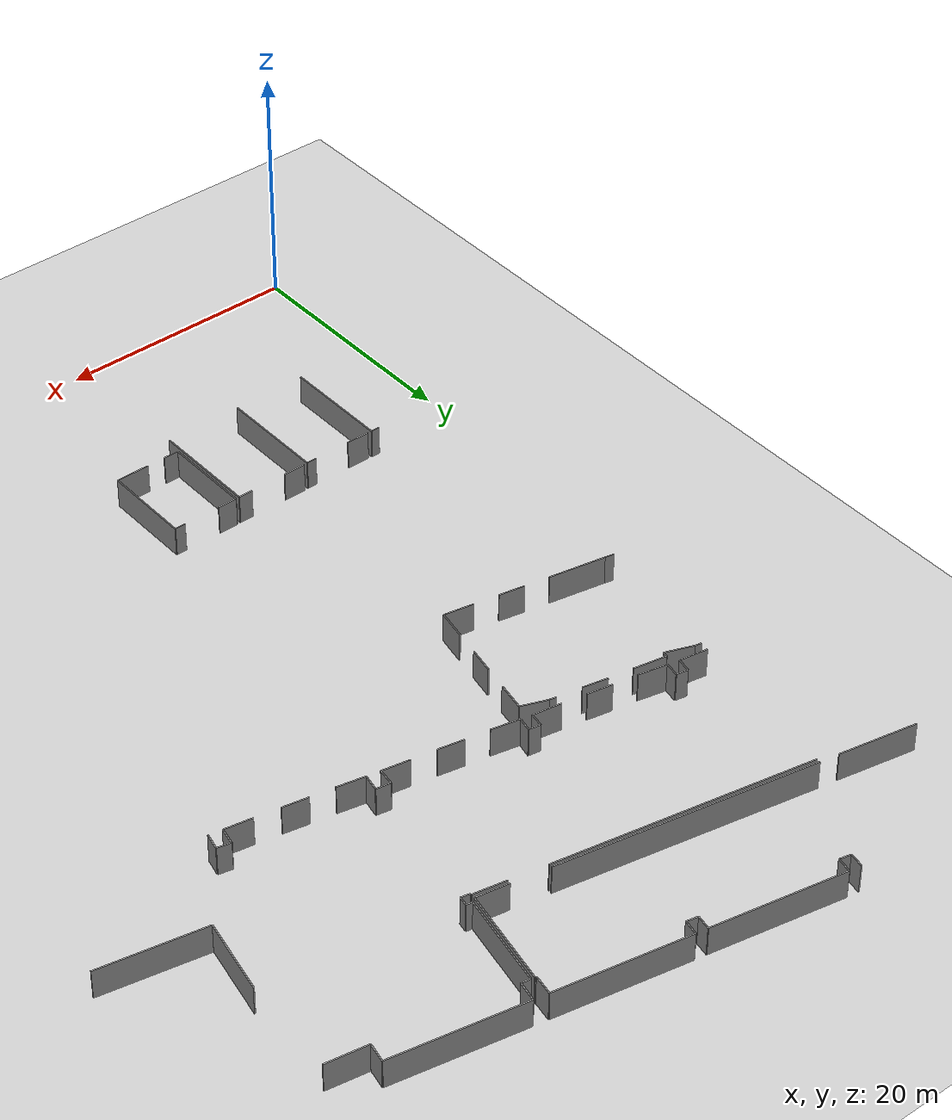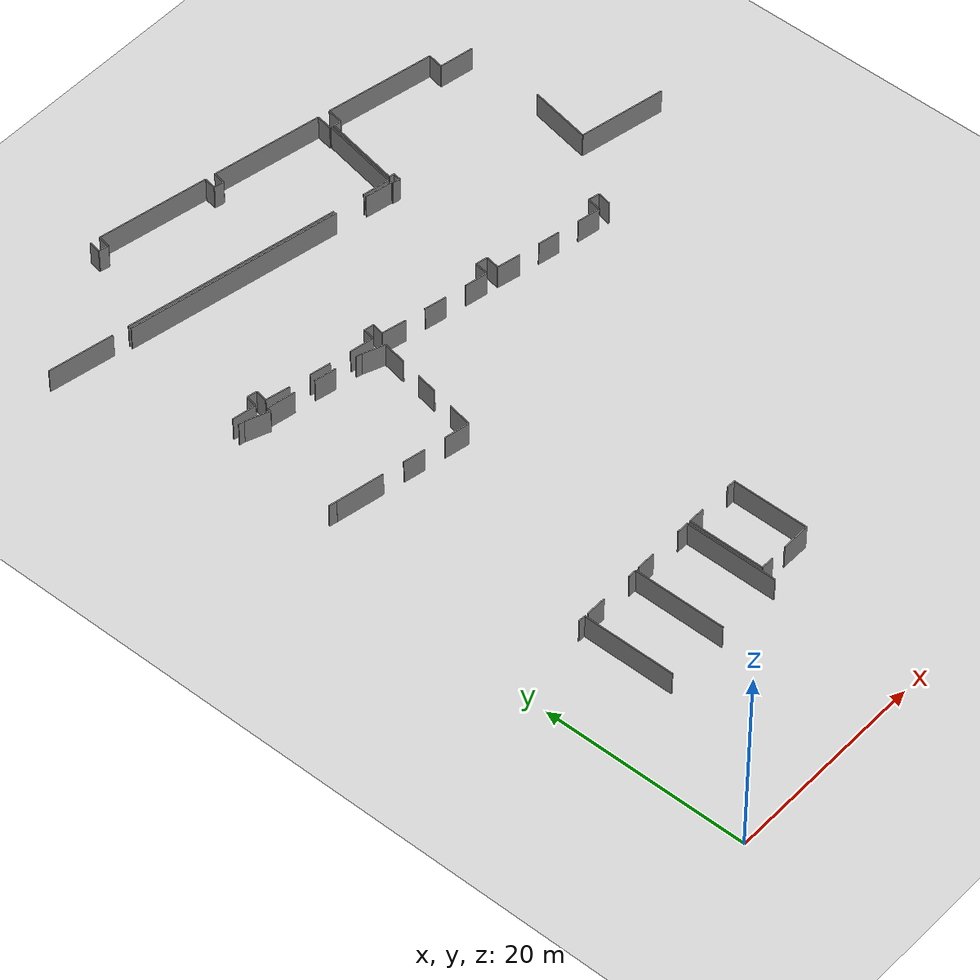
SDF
<sdf version="1.6">
 <world name="default">
  <model name="ground_plane">
   <static>1</static>
   <link name="link">
    <collision name="collision">
     <geometry><plane><normal>0 0 1</normal><size>100 100</size></plane></geometry>
     <surface><friction><ode><mu>100</mu><mu2>50</mu2></ode></friction></surface>
    </collision>
    <visual name="visual">
     <cast_shadows>0</cast_shadows>
     <geometry><plane><normal>0 0 1</normal><size>100 100</size></plane></geometry>
     <material>
      <script><uri>file://media/materials/scripts/gazebo.material</uri><name>Gazebo/Grey</name></script>
     </material>
    </visual>
   </link>
  </model>
  <model name="0510045925_40">
   <static>1</static>
   <link name="Wall_419">
    <collision name="Wall_419_Collision">
     <geometry><box><size>21.2453132387 0.1 2.5</size></box></geometry>
     <pose>10.6226566194 0 1.25 0 0 0</pose>
    </collision>
    <visual name="Wall_419_Visual">
     <pose>10.6226566194 0 1.25 0 0 0</pose>
     <geometry><box><size>21.2453132387 0.1 2.5</size></box></geometry>
     <material>
      <script><uri>file://media/materials/scripts/gazebo.material</uri><name>Gazebo/Grey</name></script>
      <ambient>1 1 1 1</ambient>
     </material>
    </visual>
    <pose>140.829217533 -30.2237760463 0 0 0 -0.190521608207</pose>
   </link>
   <link name="Wall_420">
    <collision name="Wall_420_Collision">
     <geometry><box><size>2.73906946664 0.1 2.5</size></box></geometry>
     <pose>1.36953473332 0 1.25 0 0 0</pose>
    </collision>
    <visual name="Wall_420_Visual">
     <pose>1.36953473332 0 1.25 0 0 0</pose>
     <geometry><box><size>2.73906946664 0.1 2.5</size></box></geometry>
     <material>
      <script><uri>file://media/materials/scripts/gazebo.material</uri><name>Gazebo/Grey</name></script>
      <ambient>1 1 1 1</ambient>
     </material>
    </visual>
    <pose>164.751453009 -34.8635060024 0 0 0 -0.192434579996</pose>
   </link>
   <link name="Wall_421">
    <collision name="Wall_421_Collision">
     <geometry><box><size>0.0983794367165 0.1 2.5</size></box></geometry>
     <pose>0.0491897183583 0 1.25 0 0 0</pose>
    </collision>
    <visual name="Wall_421_Visual">
     <pose>0.0491897183583 0 1.25 0 0 0</pose>
     <geometry><box><size>0.0983794367165 0.1 2.5</size></box></geometry>
     <material>
      <script><uri>file://media/materials/scripts/gazebo.material</uri><name>Gazebo/Grey</name></script>
      <ambient>1 1 1 1</ambient>
     </material>
    </visual>
    <pose>167.439963453 -35.3873505749 0 0 0 -1.62758275348</pose>
   </link>
   <link name="Wall_422">
    <collision name="Wall_422_Collision">
     <geometry><box><size>0.758522596224 0.1 2.5</size></box></geometry>
     <pose>0.379261298112 0 1.25 0 0 0</pose>
    </collision>
    <visual name="Wall_422_Visual">
     <pose>0.379261298112 0 1.25 0 0 0</pose>
     <geometry><box><size>0.758522596224 0.1 2.5</size></box></geometry>
     <material>
      <script><uri>file://media/materials/scripts/gazebo.material</uri><name>Gazebo/Grey</name></script>
      <ambient>1 1 1 1</ambient>
     </material>
    </visual>
    <pose>167.434379838 -35.4855714322 0 0 0 -0.209994971859</pose>
   </link>
   <link name="Wall_423">
    <collision name="Wall_423_Collision">
     <geometry><box><size>0.752421767799 0.1 2.5</size></box></geometry>
     <pose>0.376210883899 0 1.25 0 0 0</pose>
    </collision>
    <visual name="Wall_423_Visual">
     <pose>0.376210883899 0 1.25 0 0 0</pose>
     <geometry><box><size>0.752421767799 0.1 2.5</size></box></geometry>
     <material>
      <script><uri>file://media/materials/scripts/gazebo.material</uri><name>Gazebo/Grey</name></script>
      <ambient>1 1 1 1</ambient>
     </material>
    </visual>
    <pose>168.176239182 -35.6436892465 0 0 0 1.40304132245</pose>
   </link>
   <link name="Wall_424">
    <collision name="Wall_424_Collision">
     <geometry><box><size>0.507170764828 0.1 2.5</size></box></geometry>
     <pose>0.253585382414 0 1.25 0 0 0</pose>
    </collision>
    <visual name="Wall_424_Visual">
     <pose>0.253585382414 0 1.25 0 0 0</pose>
     <geometry><box><size>0.507170764828 0.1 2.5</size></box></geometry>
     <material>
      <script><uri>file://media/materials/scripts/gazebo.material</uri><name>Gazebo/Grey</name></script>
      <ambient>1 1 1 1</ambient>
     </material>
    </visual>
    <pose>168.301870511 -34.9018299028 0 0 0 2.93546240569</pose>
   </link>
   <link name="Wall_425">
    <collision name="Wall_425_Collision">
     <geometry><box><size>7.72024058221 0.1 2.5</size></box></geometry>
     <pose>3.86012029111 0 1.25 0 0 0</pose>
    </collision>
    <visual name="Wall_425_Visual">
     <pose>3.86012029111 0 1.25 0 0 0</pose>
     <geometry><box><size>7.72024058221 0.1 2.5</size></box></geometry>
     <material>
      <script><uri>file://media/materials/scripts/gazebo.material</uri><name>Gazebo/Grey</name></script>
      <ambient>1 1 1 1</ambient>
     </material>
    </visual>
    <pose>167.80543641 -34.7980254308 0 0 0 1.38112466234</pose>
   </link>
   <link name="Wall_426">
    <collision name="Wall_426_Collision">
     <geometry><box><size>0.743953477851 0.1 2.5</size></box></geometry>
     <pose>0.371976738926 0 1.25 0 0 0</pose>
    </collision>
    <visual name="Wall_426_Visual">
     <pose>0.371976738926 0 1.25 0 0 0</pose>
     <geometry><box><size>0.743953477851 0.1 2.5</size></box></geometry>
     <material>
      <script><uri>file://media/materials/scripts/gazebo.material</uri><name>Gazebo/Grey</name></script>
      <ambient>1 1 1 1</ambient>
     </material>
    </visual>
    <pose>169.260983224 -27.2162381665 0 0 0 -0.161727490538</pose>
   </link>
   <link name="Wall_427">
    <collision name="Wall_427_Collision">
     <geometry><box><size>1.6028851875 0.1 2.5</size></box></geometry>
     <pose>0.801442593749 0 1.25 0 0 0</pose>
    </collision>
    <visual name="Wall_427_Visual">
     <pose>0.801442593749 0 1.25 0 0 0</pose>
     <geometry><box><size>1.6028851875 0.1 2.5</size></box></geometry>
     <material>
      <script><uri>file://media/materials/scripts/gazebo.material</uri><name>Gazebo/Grey</name></script>
      <ambient>1 1 1 1</ambient>
     </material>
    </visual>
    <pose>169.995228547 -27.3360320804 0 0 0 1.37349392597</pose>
   </link>
   <link name="Wall_428">
    <collision name="Wall_428_Collision">
     <geometry><box><size>10.8196131625 0.1 2.5</size></box></geometry>
     <pose>5.40980658126 0 1.25 0 0 0</pose>
    </collision>
    <visual name="Wall_428_Visual">
     <pose>5.40980658126 0 1.25 0 0 0</pose>
     <geometry><box><size>10.8196131625 0.1 2.5</size></box></geometry>
     <material>
      <script><uri>file://media/materials/scripts/gazebo.material</uri><name>Gazebo/Grey</name></script>
      <ambient>1 1 1 1</ambient>
     </material>
    </visual>
    <pose>170.309433771 -25.7642445623 0 0 0 -0.194322496635</pose>
   </link>
   <link name="Wall_429">
    <collision name="Wall_429_Collision">
     <geometry><box><size>1.58691187095 0.1 2.5</size></box></geometry>
     <pose>0.793455935477 0 1.25 0 0 0</pose>
    </collision>
    <visual name="Wall_429_Visual">
     <pose>0.793455935477 0 1.25 0 0 0</pose>
     <geometry><box><size>1.58691187095 0.1 2.5</size></box></geometry>
     <material>
      <script><uri>file://media/materials/scripts/gazebo.material</uri><name>Gazebo/Grey</name></script>
      <ambient>1 1 1 1</ambient>
     </material>
    </visual>
    <pose>180.925407985 -27.8535316363 0 0 0 -1.76587083191</pose>
   </link>
   <link name="Wall_430">
    <collision name="Wall_430_Collision">
     <geometry><box><size>3.41861549968 0.1 2.5</size></box></geometry>
     <pose>1.70930774984 0 1.25 0 0 0</pose>
    </collision>
    <visual name="Wall_430_Visual">
     <pose>1.70930774984 0 1.25 0 0 0</pose>
     <geometry><box><size>3.41861549968 0.1 2.5</size></box></geometry>
     <material>
      <script><uri>file://media/materials/scripts/gazebo.material</uri><name>Gazebo/Grey</name></script>
      <ambient>1 1 1 1</ambient>
     </material>
    </visual>
    <pose>180.617801579 -29.4103449151 0 0 0 -0.171971385868</pose>
   </link>
   <link name="Wall_441">
    <collision name="Wall_441_Collision">
     <geometry><box><size>6.20317735847 0.1 2.5</size></box></geometry>
     <pose>3.10158867924 0 1.25 0 0 0</pose>
    </collision>
    <visual name="Wall_441_Visual">
     <pose>3.10158867924 0 1.25 0 0 0</pose>
     <geometry><box><size>6.20317735847 0.1 2.5</size></box></geometry>
     <material>
      <script><uri>file://media/materials/scripts/gazebo.material</uri><name>Gazebo/Grey</name></script>
      <ambient>1 1 1 1</ambient>
     </material>
    </visual>
    <pose>183.434481358 -37.8959163473 0 0 0 -1.76450885415</pose>
   </link>
   <link name="Wall_442">
    <collision name="Wall_442_Collision">
     <geometry><box><size>8.62499282361 0.1 2.5</size></box></geometry>
     <pose>4.3124964118 0 1.25 0 0 0</pose>
    </collision>
    <visual name="Wall_442_Visual">
     <pose>4.3124964118 0 1.25 0 0 0</pose>
     <geometry><box><size>8.62499282361 0.1 2.5</size></box></geometry>
     <material>
      <script><uri>file://media/materials/scripts/gazebo.material</uri><name>Gazebo/Grey</name></script>
      <ambient>1 1 1 1</ambient>
     </material>
    </visual>
    <pose>182.24034923 -43.9830714956 0 0 0 -0.194585103321</pose>
   </link>
   <link name="Wall_454">
    <collision name="Wall_454_Collision">
     <geometry><box><size>1.3896081251 0.1 2.5</size></box></geometry>
     <pose>0.694804062549 0 1.25 0 0 0</pose>
    </collision>
    <visual name="Wall_454_Visual">
     <pose>0.694804062549 0 1.25 0 0 0</pose>
     <geometry><box><size>1.3896081251 0.1 2.5</size></box></geometry>
     <material>
      <script><uri>file://media/materials/scripts/gazebo.material</uri><name>Gazebo/Grey</name></script>
      <ambient>1 1 1 1</ambient>
     </material>
    </visual>
    <pose>177.565594782 -50.85878531 0 0 0 1.34158810875</pose>
   </link>
   <link name="Wall_455">
    <collision name="Wall_455_Collision">
     <geometry><box><size>1.13548936894 0.1 2.5</size></box></geometry>
     <pose>0.56774468447 0 1.25 0 0 0</pose>
    </collision>
    <visual name="Wall_455_Visual">
     <pose>0.56774468447 0 1.25 0 0 0</pose>
     <geometry><box><size>1.13548936894 0.1 2.5</size></box></geometry>
     <material>
      <script><uri>file://media/materials/scripts/gazebo.material</uri><name>Gazebo/Grey</name></script>
      <ambient>1 1 1 1</ambient>
     </material>
    </visual>
    <pose>177.881322809 -49.5055201645 0 0 0 2.9287664904</pose>
   </link>
   <link name="Wall_456">
    <collision name="Wall_456_Collision">
     <geometry><box><size>1.38756110321 0.1 2.5</size></box></geometry>
     <pose>0.693780551606 0 1.25 0 0 0</pose>
    </collision>
    <visual name="Wall_456_Visual">
     <pose>0.693780551606 0 1.25 0 0 0</pose>
     <geometry><box><size>1.38756110321 0.1 2.5</size></box></geometry>
     <material>
      <script><uri>file://media/materials/scripts/gazebo.material</uri><name>Gazebo/Grey</name></script>
      <ambient>1 1 1 1</ambient>
     </material>
    </visual>
    <pose>176.771452501 -49.2656785361 0 0 0 -1.76815601478</pose>
   </link>
   <link name="Wall_457">
    <collision name="Wall_457_Collision">
     <geometry><box><size>2.29136058775 0.1 2.5</size></box></geometry>
     <pose>1.14568029387 0 1.25 0 0 0</pose>
    </collision>
    <visual name="Wall_457_Visual">
     <pose>1.14568029387 0 1.25 0 0 0</pose>
     <geometry><box><size>2.29136058775 0.1 2.5</size></box></geometry>
     <material>
      <script><uri>file://media/materials/scripts/gazebo.material</uri><name>Gazebo/Grey</name></script>
      <ambient>1 1 1 1</ambient>
     </material>
    </visual>
    <pose>176.499378188 -50.6263039009 0 0 0 2.96387907801</pose>
   </link>
   <link name="Wall_458">
    <collision name="Wall_458_Collision">
     <geometry><box><size>2.12041304274 0.1 2.5</size></box></geometry>
     <pose>1.06020652137 0 1.25 0 0 0</pose>
    </collision>
    <visual name="Wall_458_Visual">
     <pose>1.06020652137 0 1.25 0 0 0</pose>
     <geometry><box><size>2.12041304274 0.1 2.5</size></box></geometry>
     <material>
      <script><uri>file://media/materials/scripts/gazebo.material</uri><name>Gazebo/Grey</name></script>
      <ambient>1 1 1 1</ambient>
     </material>
    </visual>
    <pose>172.193903708 -49.817187381 0 0 0 2.94889189493</pose>
   </link>
   <link name="Wall_459">
    <collision name="Wall_459_Collision">
     <geometry><box><size>2.31780752852 0.1 2.5</size></box></geometry>
     <pose>1.15890376426 0 1.25 0 0 0</pose>
    </collision>
    <visual name="Wall_459_Visual">
     <pose>1.15890376426 0 1.25 0 0 0</pose>
     <geometry><box><size>2.31780752852 0.1 2.5</size></box></geometry>
     <material>
      <script><uri>file://media/materials/scripts/gazebo.material</uri><name>Gazebo/Grey</name></script>
      <ambient>1 1 1 1</ambient>
     </material>
    </visual>
    <pose>168.121164437 -49.034719931 0 0 0 2.93436148617</pose>
   </link>
   <link name="Wall_460">
    <collision name="Wall_460_Collision">
     <geometry><box><size>1.4012494917 0.1 2.5</size></box></geometry>
     <pose>0.700624745852 0 1.25 0 0 0</pose>
    </collision>
    <visual name="Wall_460_Visual">
     <pose>0.700624745852 0 1.25 0 0 0</pose>
     <geometry><box><size>1.4012494917 0.1 2.5</size></box></geometry>
     <material>
      <script><uri>file://media/materials/scripts/gazebo.material</uri><name>Gazebo/Grey</name></script>
      <ambient>1 1 1 1</ambient>
     </material>
    </visual>
    <pose>165.852947895 -48.5578284815 0 0 0 1.3726192951</pose>
   </link>
   <link name="Wall_461">
    <collision name="Wall_461_Collision">
     <geometry><box><size>1.19364460237 0.1 2.5</size></box></geometry>
     <pose>0.596822301183 0 1.25 0 0 0</pose>
    </collision>
    <visual name="Wall_461_Visual">
     <pose>0.596822301183 0 1.25 0 0 0</pose>
     <geometry><box><size>1.19364460237 0.1 2.5</size></box></geometry>
     <material>
      <script><uri>file://media/materials/scripts/gazebo.material</uri><name>Gazebo/Grey</name></script>
      <ambient>1 1 1 1</ambient>
     </material>
    </visual>
    <pose>166.128829218 -47.1840054821 0 0 0 2.96267103136</pose>
   </link>
   <link name="Wall_462">
    <collision name="Wall_462_Collision">
     <geometry><box><size>1.38241196372 0.1 2.5</size></box></geometry>
     <pose>0.691205981862 0 1.25 0 0 0</pose>
    </collision>
    <visual name="Wall_462_Visual">
     <pose>0.691205981862 0 1.25 0 0 0</pose>
     <geometry><box><size>1.38241196372 0.1 2.5</size></box></geometry>
     <material>
      <script><uri>file://media/materials/scripts/gazebo.material</uri><name>Gazebo/Grey</name></script>
      <ambient>1 1 1 1</ambient>
     </material>
    </visual>
    <pose>164.95423974 -46.9715743255 0 0 0 -1.72284544868</pose>
   </link>
   <link name="Wall_463">
    <collision name="Wall_463_Collision">
     <geometry><box><size>2.28108183206 0.1 2.5</size></box></geometry>
     <pose>1.14054091603 0 1.25 0 0 0</pose>
    </collision>
    <visual name="Wall_463_Visual">
     <pose>1.14054091603 0 1.25 0 0 0</pose>
     <geometry><box><size>2.28108183206 0.1 2.5</size></box></geometry>
     <material>
      <script><uri>file://media/materials/scripts/gazebo.material</uri><name>Gazebo/Grey</name></script>
      <ambient>1 1 1 1</ambient>
     </material>
    </visual>
    <pose>164.744854192 -48.3380371057 0 0 0 2.95639507028</pose>
   </link>
   <link name="Wall_464">
    <collision name="Wall_464_Collision">
     <geometry><box><size>2.15386641982 0.1 2.5</size></box></geometry>
     <pose>1.07693320991 0 1.25 0 0 0</pose>
    </collision>
    <visual name="Wall_464_Visual">
     <pose>1.07693320991 0 1.25 0 0 0</pose>
     <geometry><box><size>2.15386641982 0.1 2.5</size></box></geometry>
     <material>
      <script><uri>file://media/materials/scripts/gazebo.material</uri><name>Gazebo/Grey</name></script>
      <ambient>1 1 1 1</ambient>
     </material>
    </visual>
    <pose>160.440648714 -47.541610619 0 0 0 2.93906680042</pose>
   </link>
   <link name="Wall_465">
    <collision name="Wall_465_Collision">
     <geometry><box><size>2.39232945676 0.1 2.5</size></box></geometry>
     <pose>1.19616472838 0 1.25 0 0 0</pose>
    </collision>
    <visual name="Wall_465_Visual">
     <pose>1.19616472838 0 1.25 0 0 0</pose>
     <geometry><box><size>2.39232945676 0.1 2.5</size></box></geometry>
     <material>
      <script><uri>file://media/materials/scripts/gazebo.material</uri><name>Gazebo/Grey</name></script>
      <ambient>1 1 1 1</ambient>
     </material>
    </visual>
    <pose>156.310804294 -46.747722139 0 0 0 2.92659445058</pose>
   </link>
   <link name="Wall_466">
    <collision name="Wall_466_Collision">
     <geometry><box><size>1.18981158916 0.1 2.5</size></box></geometry>
     <pose>0.594905794578 0 1.25 0 0 0</pose>
    </collision>
    <visual name="Wall_466_Visual">
     <pose>0.594905794578 0 1.25 0 0 0</pose>
     <geometry><box><size>1.18981158916 0.1 2.5</size></box></geometry>
     <material>
      <script><uri>file://media/materials/scripts/gazebo.material</uri><name>Gazebo/Grey</name></script>
      <ambient>1 1 1 1</ambient>
     </material>
    </visual>
    <pose>153.973553971 -46.2373290018 0 0 0 1.35277521406</pose>
   </link>
   <link name="Wall_467">
    <collision name="Wall_467_Collision">
     <geometry><box><size>0.976620869445 0.1 2.5</size></box></geometry>
     <pose>0.488310434722 0 1.25 0 0 0</pose>
    </collision>
    <visual name="Wall_467_Visual">
     <pose>0.488310434722 0 1.25 0 0 0</pose>
     <geometry><box><size>0.976620869445 0.1 2.5</size></box></geometry>
     <material>
      <script><uri>file://media/materials/scripts/gazebo.material</uri><name>Gazebo/Grey</name></script>
      <ambient>1 1 1 1</ambient>
     </material>
    </visual>
    <pose>154.230907845 -45.0756833583 0 0 0 2.97080445637</pose>
   </link>
   <link name="Wall_468">
    <collision name="Wall_468_Collision">
     <geometry><box><size>1.14733733935 0.1 2.5</size></box></geometry>
     <pose>0.573668669673 0 1.25 0 0 0</pose>
    </collision>
    <visual name="Wall_468_Visual">
     <pose>0.573668669673 0 1.25 0 0 0</pose>
     <geometry><box><size>1.14733733935 0.1 2.5</size></box></geometry>
     <material>
      <script><uri>file://media/materials/scripts/gazebo.material</uri><name>Gazebo/Grey</name></script>
      <ambient>1 1 1 1</ambient>
     </material>
    </visual>
    <pose>153.268495723 -44.9096977234 0 0 0 -1.75274708915</pose>
   </link>
   <link name="Wall_469">
    <collision name="Wall_469_Collision">
     <geometry><box><size>2.37189478991 0.1 2.5</size></box></geometry>
     <pose>1.18594739495 0 1.25 0 0 0</pose>
    </collision>
    <visual name="Wall_469_Visual">
     <pose>1.18594739495 0 1.25 0 0 0</pose>
     <geometry><box><size>2.37189478991 0.1 2.5</size></box></geometry>
     <material>
      <script><uri>file://media/materials/scripts/gazebo.material</uri><name>Gazebo/Grey</name></script>
      <ambient>1 1 1 1</ambient>
     </material>
    </visual>
    <pose>153.06088678 -46.0380954798 0 0 0 2.97236279699</pose>
   </link>
   <link name="Wall_470">
    <collision name="Wall_470_Collision">
     <geometry><box><size>2.08778853606 0.1 2.5</size></box></geometry>
     <pose>1.04389426803 0 1.25 0 0 0</pose>
    </collision>
    <visual name="Wall_470_Visual">
     <pose>1.04389426803 0 1.25 0 0 0</pose>
     <geometry><box><size>2.08778853606 0.1 2.5</size></box></geometry>
     <material>
      <script><uri>file://media/materials/scripts/gazebo.material</uri><name>Gazebo/Grey</name></script>
      <ambient>1 1 1 1</ambient>
     </material>
    </visual>
    <pose>148.684601914 -45.2449684018 0 0 0 2.94522224537</pose>
   </link>
   <link name="Wall_471">
    <collision name="Wall_471_Collision">
     <geometry><box><size>2.39437718364 0.1 2.5</size></box></geometry>
     <pose>1.19718859182 0 1.25 0 0 0</pose>
    </collision>
    <visual name="Wall_471_Visual">
     <pose>1.19718859182 0 1.25 0 0 0</pose>
     <geometry><box><size>2.39437718364 0.1 2.5</size></box></geometry>
     <material>
      <script><uri>file://media/materials/scripts/gazebo.material</uri><name>Gazebo/Grey</name></script>
      <ambient>1 1 1 1</ambient>
     </material>
    </visual>
    <pose>144.572777341 -44.4678307657 0 0 0 2.92764905972</pose>
   </link>
   <link name="Wall_472">
    <collision name="Wall_472_Collision">
     <geometry><box><size>1.19253176141 0.1 2.5</size></box></geometry>
     <pose>0.596265880704 0 1.25 0 0 0</pose>
    </collision>
    <visual name="Wall_472_Visual">
     <pose>0.596265880704 0 1.25 0 0 0</pose>
     <geometry><box><size>1.19253176141 0.1 2.5</size></box></geometry>
     <material>
      <script><uri>file://media/materials/scripts/gazebo.material</uri><name>Gazebo/Grey</name></script>
      <ambient>1 1 1 1</ambient>
     </material>
    </visual>
    <pose>142.23298901 -43.9594680338 0 0 0 1.39105704092</pose>
   </link>
   <link name="Wall_473">
    <collision name="Wall_473_Collision">
     <geometry><box><size>0.964458556222 0.1 2.5</size></box></geometry>
     <pose>0.482229278111 0 1.25 0 0 0</pose>
    </collision>
    <visual name="Wall_473_Visual">
     <pose>0.482229278111 0 1.25 0 0 0</pose>
     <geometry><box><size>0.964458556222 0.1 2.5</size></box></geometry>
     <material>
      <script><uri>file://media/materials/scripts/gazebo.material</uri><name>Gazebo/Grey</name></script>
      <ambient>1 1 1 1</ambient>
     </material>
    </visual>
    <pose>142.446181569 -42.7861475597 0 0 0 2.95204168922</pose>
   </link>
   <link name="Wall_474">
    <collision name="Wall_474_Collision">
     <geometry><box><size>1.16625766198 0.1 2.5</size></box></geometry>
     <pose>0.583128830992 0 1.25 0 0 0</pose>
    </collision>
    <visual name="Wall_474_Visual">
     <pose>0.583128830992 0 1.25 0 0 0</pose>
     <geometry><box><size>1.16625766198 0.1 2.5</size></box></geometry>
     <material>
      <script><uri>file://media/materials/scripts/gazebo.material</uri><name>Gazebo/Grey</name></script>
      <ambient>1 1 1 1</ambient>
     </material>
    </visual>
    <pose>141.498997487 -42.6044262836 0 0 0 -1.77681309857</pose>
   </link>
   <link name="Wall_475">
    <collision name="Wall_475_Collision">
     <geometry><box><size>2.36039564743 0.1 2.5</size></box></geometry>
     <pose>1.18019782371 0 1.25 0 0 0</pose>
    </collision>
    <visual name="Wall_475_Visual">
     <pose>1.18019782371 0 1.25 0 0 0</pose>
     <geometry><box><size>2.36039564743 0.1 2.5</size></box></geometry>
     <material>
      <script><uri>file://media/materials/scripts/gazebo.material</uri><name>Gazebo/Grey</name></script>
      <ambient>1 1 1 1</ambient>
     </material>
    </visual>
    <pose>141.260424862 -43.7460216746 0 0 0 2.97087571129</pose>
   </link>
   <link name="Wall_511">
    <collision name="Wall_511_Collision">
     <geometry><box><size>1.19854746049 0.1 2.5</size></box></geometry>
     <pose>0.599273730243 0 1.25 0 0 0</pose>
    </collision>
    <visual name="Wall_511_Visual">
     <pose>0.599273730243 0 1.25 0 0 0</pose>
     <geometry><box><size>1.19854746049 0.1 2.5</size></box></geometry>
     <material>
      <script><uri>file://media/materials/scripts/gazebo.material</uri><name>Gazebo/Grey</name></script>
      <ambient>1 1 1 1</ambient>
     </material>
    </visual>
    <pose>145.705235908 -20.9915230578 0 0 0 -1.75091498814</pose>
   </link>
   <link name="Wall_512">
    <collision name="Wall_512_Collision">
     <geometry><box><size>0.96242594258 0.1 2.5</size></box></geometry>
     <pose>0.48121297129 0 1.25 0 0 0</pose>
    </collision>
    <visual name="Wall_512_Visual">
     <pose>0.48121297129 0 1.25 0 0 0</pose>
     <geometry><box><size>0.96242594258 0.1 2.5</size></box></geometry>
     <material>
      <script><uri>file://media/materials/scripts/gazebo.material</uri><name>Gazebo/Grey</name></script>
      <ambient>1 1 1 1</ambient>
     </material>
    </visual>
    <pose>145.490520545 -22.1706809472 0 0 0 -0.219584251245</pose>
   </link>
   <link name="Wall_513">
    <collision name="Wall_513_Collision">
     <geometry><box><size>1.23331021965 0.1 2.5</size></box></geometry>
     <pose>0.616655109826 0 1.25 0 0 0</pose>
    </collision>
    <visual name="Wall_513_Visual">
     <pose>0.616655109826 0 1.25 0 0 0</pose>
     <geometry><box><size>1.23331021965 0.1 2.5</size></box></geometry>
     <material>
      <script><uri>file://media/materials/scripts/gazebo.material</uri><name>Gazebo/Grey</name></script>
      <ambient>1 1 1 1</ambient>
     </material>
    </visual>
    <pose>146.429836806 -22.3803202964 0 0 0 1.37340076695</pose>
   </link>
   <link name="Wall_514">
    <collision name="Wall_514_Collision">
     <geometry><box><size>10.9782048186 0.1 2.5</size></box></geometry>
     <pose>5.4891024093 0 1.25 0 0 0</pose>
    </collision>
    <visual name="Wall_514_Visual">
     <pose>5.4891024093 0 1.25 0 0 0</pose>
     <geometry><box><size>10.9782048186 0.1 2.5</size></box></geometry>
     <material>
      <script><uri>file://media/materials/scripts/gazebo.material</uri><name>Gazebo/Grey</name></script>
      <ambient>1 1 1 1</ambient>
     </material>
    </visual>
    <pose>146.67170884 -21.1709601279 0 0 0 -0.192893352753</pose>
   </link>
   <link name="Wall_515">
    <collision name="Wall_515_Collision">
     <geometry><box><size>1.18880242303 0.1 2.5</size></box></geometry>
     <pose>0.594401211516 0 1.25 0 0 0</pose>
    </collision>
    <visual name="Wall_515_Visual">
     <pose>0.594401211516 0 1.25 0 0 0</pose>
     <geometry><box><size>1.18880242303 0.1 2.5</size></box></geometry>
     <material>
      <script><uri>file://media/materials/scripts/gazebo.material</uri><name>Gazebo/Grey</name></script>
      <ambient>1 1 1 1</ambient>
     </material>
    </visual>
    <pose>157.446308469 -23.2754752417 0 0 0 -1.75588198171</pose>
   </link>
   <link name="Wall_516">
    <collision name="Wall_516_Collision">
     <geometry><box><size>0.955736102849 0.1 2.5</size></box></geometry>
     <pose>0.477868051425 0 1.25 0 0 0</pose>
    </collision>
    <visual name="Wall_516_Visual">
     <pose>0.477868051425 0 1.25 0 0 0</pose>
     <geometry><box><size>0.955736102849 0.1 2.5</size></box></geometry>
     <material>
      <script><uri>file://media/materials/scripts/gazebo.material</uri><name>Gazebo/Grey</name></script>
      <ambient>1 1 1 1</ambient>
     </material>
    </visual>
    <pose>157.227532296 -24.4439735032 0 0 0 -0.218697749376</pose>
   </link>
   <link name="Wall_517">
    <collision name="Wall_517_Collision">
     <geometry><box><size>1.22917957386 0.1 2.5</size></box></geometry>
     <pose>0.61458978693 0 1.25 0 0 0</pose>
    </collision>
    <visual name="Wall_517_Visual">
     <pose>0.61458978693 0 1.25 0 0 0</pose>
     <geometry><box><size>1.22917957386 0.1 2.5</size></box></geometry>
     <material>
      <script><uri>file://media/materials/scripts/gazebo.material</uri><name>Gazebo/Grey</name></script>
      <ambient>1 1 1 1</ambient>
     </material>
    </visual>
    <pose>158.160503541 -24.6513286465 0 0 0 1.37441311728</pose>
   </link>
   <link name="Wall_518">
    <collision name="Wall_518_Collision">
     <geometry><box><size>10.9433495861 0.1 2.5</size></box></geometry>
     <pose>5.47167479303 0 1.25 0 0 0</pose>
    </collision>
    <visual name="Wall_518_Visual">
     <pose>5.47167479303 0 1.25 0 0 0</pose>
     <geometry><box><size>10.9433495861 0.1 2.5</size></box></geometry>
     <material>
      <script><uri>file://media/materials/scripts/gazebo.material</uri><name>Gazebo/Grey</name></script>
      <ambient>1 1 1 1</ambient>
     </material>
    </visual>
    <pose>158.400345169 -23.4457754879 0 0 0 -0.193161014508</pose>
   </link>
   <link name="Wall_519">
    <collision name="Wall_519_Collision">
     <geometry><box><size>1.61187061946 0.1 2.5</size></box></geometry>
     <pose>0.805935309732 0 1.25 0 0 0</pose>
    </collision>
    <visual name="Wall_519_Visual">
     <pose>0.805935309732 0 1.25 0 0 0</pose>
     <geometry><box><size>1.61187061946 0.1 2.5</size></box></geometry>
     <material>
      <script><uri>file://media/materials/scripts/gazebo.material</uri><name>Gazebo/Grey</name></script>
      <ambient>1 1 1 1</ambient>
     </material>
    </visual>
    <pose>169.140174107 -25.5464835918 0 0 0 -1.7466360463</pose>
   </link>
   <link name="Wall_520">
    <collision name="Wall_520_Collision">
     <geometry><box><size>0.116526571475 0.1 2.5</size></box></geometry>
     <pose>0.0582632857373 0 1.25 0 0 0</pose>
    </collision>
    <visual name="Wall_520_Visual">
     <pose>0.0582632857373 0 1.25 0 0 0</pose>
     <geometry><box><size>0.116526571475 0.1 2.5</size></box></geometry>
     <material>
      <script><uri>file://media/materials/scripts/gazebo.material</uri><name>Gazebo/Grey</name></script>
      <ambient>1 1 1 1</ambient>
     </material>
    </visual>
    <pose>168.858201568 -27.1334991498 0 0 0 -0.188425275042</pose>
   </link>
   <link name="Wall_521">
    <collision name="Wall_521_Collision">
     <geometry><box><size>8.03191645253 0.1 2.5</size></box></geometry>
     <pose>4.01595822627 0 1.25 0 0 0</pose>
    </collision>
    <visual name="Wall_521_Visual">
     <pose>4.01595822627 0 1.25 0 0 0</pose>
     <geometry><box><size>8.03191645253 0.1 2.5</size></box></geometry>
     <material>
      <script><uri>file://media/materials/scripts/gazebo.material</uri><name>Gazebo/Grey</name></script>
      <ambient>1 1 1 1</ambient>
     </material>
    </visual>
    <pose>168.972665668 -27.155326007 0 0 0 -1.75861725624</pose>
   </link>
   <link name="Wall_522">
    <collision name="Wall_522_Collision">
     <geometry><box><size>2.70632295154 0.1 2.5</size></box></geometry>
     <pose>1.35316147577 0 1.25 0 0 0</pose>
    </collision>
    <visual name="Wall_522_Visual">
     <pose>1.35316147577 0 1.25 0 0 0</pose>
     <geometry><box><size>2.70632295154 0.1 2.5</size></box></geometry>
     <material>
      <script><uri>file://media/materials/scripts/gazebo.material</uri><name>Gazebo/Grey</name></script>
      <ambient>1 1 1 1</ambient>
     </material>
    </visual>
    <pose>167.472957539 -35.0459886805 0 0 0 2.96216694152</pose>
   </link>
   <link name="Wall_523">
    <collision name="Wall_523_Collision">
     <geometry><box><size>21.2286154457 0.1 2.5</size></box></geometry>
     <pose>10.6143077228 0 1.25 0 0 0</pose>
    </collision>
    <visual name="Wall_523_Visual">
     <pose>10.6143077228 0 1.25 0 0 0</pose>
     <geometry><box><size>21.2286154457 0.1 2.5</size></box></geometry>
     <material>
      <script><uri>file://media/materials/scripts/gazebo.material</uri><name>Gazebo/Grey</name></script>
      <ambient>1 1 1 1</ambient>
     </material>
    </visual>
    <pose>161.692647395 -33.9680972564 0 0 0 2.94884896456</pose>
   </link>
   <link name="Wall_524">
    <collision name="Wall_524_Collision">
     <geometry><box><size>6.47603364753 0.1 2.5</size></box></geometry>
     <pose>3.23801682376 0 1.25 0 0 0</pose>
    </collision>
    <visual name="Wall_524_Visual">
     <pose>3.23801682376 0 1.25 0 0 0</pose>
     <geometry><box><size>6.47603364753 0.1 2.5</size></box></geometry>
     <material>
      <script><uri>file://media/materials/scripts/gazebo.material</uri><name>Gazebo/Grey</name></script>
      <ambient>1 1 1 1</ambient>
     </material>
    </visual>
    <pose>139.313773762 -29.6212532677 0 0 0 2.94931595208</pose>
   </link>
   <link name="Wall_622">
    <collision name="Wall_622_Collision">
     <geometry><box><size>0.533882955692 0.1 2.5</size></box></geometry>
     <pose>0.266941477846 0 1.25 0 0 0</pose>
    </collision>
    <visual name="Wall_622_Visual">
     <pose>0.266941477846 0 1.25 0 0 0</pose>
     <geometry><box><size>0.533882955692 0.1 2.5</size></box></geometry>
     <material>
      <script><uri>file://media/materials/scripts/gazebo.material</uri><name>Gazebo/Grey</name></script>
      <ambient>1 1 1 1</ambient>
     </material>
    </visual>
    <pose>138.814547854 -44.0957589909 0 0 0 -0.194225702855</pose>
   </link>
   <link name="Wall_623">
    <collision name="Wall_623_Collision">
     <geometry><box><size>2.41718475505 0.1 2.5</size></box></geometry>
     <pose>1.20859237753 0 1.25 0 0 0</pose>
    </collision>
    <visual name="Wall_623_Visual">
     <pose>1.20859237753 0 1.25 0 0 0</pose>
     <geometry><box><size>2.41718475505 0.1 2.5</size></box></geometry>
     <material>
      <script><uri>file://media/materials/scripts/gazebo.material</uri><name>Gazebo/Grey</name></script>
      <ambient>1 1 1 1</ambient>
     </material>
    </visual>
    <pose>139.338392427 -44.1988020609 0 0 0 -0.365161066377</pose>
   </link>
   <link name="Wall_624">
    <collision name="Wall_624_Collision">
     <geometry><box><size>0.426457096778 0.1 2.5</size></box></geometry>
     <pose>0.213228548389 0 1.25 0 0 0</pose>
    </collision>
    <visual name="Wall_624_Visual">
     <pose>0.213228548389 0 1.25 0 0 0</pose>
     <geometry><box><size>0.426457096778 0.1 2.5</size></box></geometry>
     <material>
      <script><uri>file://media/materials/scripts/gazebo.material</uri><name>Gazebo/Grey</name></script>
      <ambient>1 1 1 1</ambient>
     </material>
    </visual>
    <pose>141.596203142 -45.0619781224 0 0 0 1.35974455979</pose>
   </link>
   <link name="Wall_625">
    <collision name="Wall_625_Collision">
     <geometry><box><size>2.7614452187 0.1 2.5</size></box></geometry>
     <pose>1.38072260935 0 1.25 0 0 0</pose>
    </collision>
    <visual name="Wall_625_Visual">
     <pose>1.38072260935 0 1.25 0 0 0</pose>
     <geometry><box><size>2.7614452187 0.1 2.5</size></box></geometry>
     <material>
      <script><uri>file://media/materials/scripts/gazebo.material</uri><name>Gazebo/Grey</name></script>
      <ambient>1 1 1 1</ambient>
     </material>
    </visual>
    <pose>141.685540976 -44.6449836299 0 0 0 -0.190762397104</pose>
   </link>
   <link name="Wall_626">
    <collision name="Wall_626_Collision">
     <geometry><box><size>2.10146368191 0.1 2.5</size></box></geometry>
     <pose>1.05073184096 0 1.25 0 0 0</pose>
    </collision>
    <visual name="Wall_626_Visual">
     <pose>1.05073184096 0 1.25 0 0 0</pose>
     <geometry><box><size>2.10146368191 0.1 2.5</size></box></geometry>
     <material>
      <script><uri>file://media/materials/scripts/gazebo.material</uri><name>Gazebo/Grey</name></script>
      <ambient>1 1 1 1</ambient>
     </material>
    </visual>
    <pose>146.447856653 -45.5396309738 0 0 0 -0.206538324658</pose>
   </link>
   <link name="Wall_627">
    <collision name="Wall_627_Collision">
     <geometry><box><size>0.57912668184 0.1 2.5</size></box></geometry>
     <pose>0.28956334092 0 1.25 0 0 0</pose>
    </collision>
    <visual name="Wall_627_Visual">
     <pose>0.28956334092 0 1.25 0 0 0</pose>
     <geometry><box><size>0.57912668184 0.1 2.5</size></box></geometry>
     <material>
      <script><uri>file://media/materials/scripts/gazebo.material</uri><name>Gazebo/Grey</name></script>
      <ambient>1 1 1 1</ambient>
     </material>
    </visual>
    <pose>150.582523286 -46.3436714804 0 0 0 -0.238920063789</pose>
   </link>
   <link name="Wall_628">
    <collision name="Wall_628_Collision">
     <geometry><box><size>2.22261605077 0.1 2.5</size></box></geometry>
     <pose>1.11130802538 0 1.25 0 0 0</pose>
    </collision>
    <visual name="Wall_628_Visual">
     <pose>1.11130802538 0 1.25 0 0 0</pose>
     <geometry><box><size>2.22261605077 0.1 2.5</size></box></geometry>
     <material>
      <script><uri>file://media/materials/scripts/gazebo.material</uri><name>Gazebo/Grey</name></script>
      <ambient>1 1 1 1</ambient>
     </material>
    </visual>
    <pose>151.14519936 -46.4807238395 0 0 0 -0.372109271797</pose>
   </link>
   <link name="Wall_629">
    <collision name="Wall_629_Collision">
     <geometry><box><size>2.38555614409 0.1 2.5</size></box></geometry>
     <pose>1.19277807205 0 1.25 0 0 0</pose>
    </collision>
    <visual name="Wall_629_Visual">
     <pose>1.19277807205 0 1.25 0 0 0</pose>
     <geometry><box><size>2.38555614409 0.1 2.5</size></box></geometry>
     <material>
      <script><uri>file://media/materials/scripts/gazebo.material</uri><name>Gazebo/Grey</name></script>
      <ambient>1 1 1 1</ambient>
     </material>
    </visual>
    <pose>153.215705185 -47.2888251567 0 0 0 -1.7563403424</pose>
   </link>
   <link name="Wall_630">
    <collision name="Wall_630_Collision">
     <geometry><box><size>2.13852279145 0.1 2.5</size></box></geometry>
     <pose>1.06926139573 0 1.25 0 0 0</pose>
    </collision>
    <visual name="Wall_630_Visual">
     <pose>1.06926139573 0 1.25 0 0 0</pose>
     <geometry><box><size>2.13852279145 0.1 2.5</size></box></geometry>
     <material>
      <script><uri>file://media/materials/scripts/gazebo.material</uri><name>Gazebo/Grey</name></script>
      <ambient>1 1 1 1</ambient>
     </material>
    </visual>
    <pose>152.389076419 -51.6219639095 0 0 0 -1.76039463759</pose>
   </link>
   <link name="Wall_631">
    <collision name="Wall_631_Collision">
     <geometry><box><size>2.44872482043 0.1 2.5</size></box></geometry>
     <pose>1.22436241021 0 1.25 0 0 0</pose>
    </collision>
    <visual name="Wall_631_Visual">
     <pose>1.22436241021 0 1.25 0 0 0</pose>
     <geometry><box><size>2.44872482043 0.1 2.5</size></box></geometry>
     <material>
      <script><uri>file://media/materials/scripts/gazebo.material</uri><name>Gazebo/Grey</name></script>
      <ambient>1 1 1 1</ambient>
     </material>
    </visual>
    <pose>151.592396132 -55.7784573996 0 0 0 -1.76384196693</pose>
   </link>
   <link name="Wall_632">
    <collision name="Wall_632_Collision">
     <geometry><box><size>2.47926484808 0.1 2.5</size></box></geometry>
     <pose>1.23963242404 0 1.25 0 0 0</pose>
    </collision>
    <visual name="Wall_632_Visual">
     <pose>1.23963242404 0 1.25 0 0 0</pose>
     <geometry><box><size>2.47926484808 0.1 2.5</size></box></geometry>
     <material>
      <script><uri>file://media/materials/scripts/gazebo.material</uri><name>Gazebo/Grey</name></script>
      <ambient>1 1 1 1</ambient>
     </material>
    </visual>
    <pose>151.122611101 -58.181695896 0 0 0 2.95064162296</pose>
   </link>
   <link name="Wall_633">
    <collision name="Wall_633_Collision">
     <geometry><box><size>2.13470327108 0.1 2.5</size></box></geometry>
     <pose>1.06735163554 0 1.25 0 0 0</pose>
    </collision>
    <visual name="Wall_633_Visual">
     <pose>1.06735163554 0 1.25 0 0 0</pose>
     <geometry><box><size>2.13470327108 0.1 2.5</size></box></geometry>
     <material>
      <script><uri>file://media/materials/scripts/gazebo.material</uri><name>Gazebo/Grey</name></script>
      <ambient>1 1 1 1</ambient>
     </material>
    </visual>
    <pose>146.636938149 -57.3220730438 0 0 0 2.94935012482</pose>
   </link>
   <link name="Wall_634">
    <collision name="Wall_634_Collision">
     <geometry><box><size>4.73452873401 0.1 2.5</size></box></geometry>
     <pose>2.367264367 0 1.25 0 0 0</pose>
    </collision>
    <visual name="Wall_634_Visual">
     <pose>2.367264367 0 1.25 0 0 0</pose>
     <geometry><box><size>4.73452873401 0.1 2.5</size></box></geometry>
     <material>
      <script><uri>file://media/materials/scripts/gazebo.material</uri><name>Gazebo/Grey</name></script>
      <ambient>1 1 1 1</ambient>
     </material>
    </visual>
    <pose>142.498464506 -56.5154945306 0 0 0 2.95307023653</pose>
   </link>
   <link name="Wall_635">
    <collision name="Wall_635_Collision">
     <geometry><box><size>0.762977651063 0.1 2.5</size></box></geometry>
     <pose>0.381488825532 0 1.25 0 0 0</pose>
    </collision>
    <visual name="Wall_635_Visual">
     <pose>0.381488825532 0 1.25 0 0 0</pose>
     <geometry><box><size>0.762977651063 0.1 2.5</size></box></geometry>
     <material>
      <script><uri>file://media/materials/scripts/gazebo.material</uri><name>Gazebo/Grey</name></script>
      <ambient>1 1 1 1</ambient>
     </material>
    </visual>
    <pose>137.847821121 -55.6282074059 0 0 0 2.93454186142</pose>
   </link>
   <link name="Wall_950">
    <collision name="Wall_950_Collision">
     <geometry><box><size>7.44422730388 0.1 2.5</size></box></geometry>
     <pose>3.72211365194 0 1.25 0 0 0</pose>
    </collision>
    <visual name="Wall_950_Visual">
     <pose>3.72211365194 0 1.25 0 0 0</pose>
     <geometry><box><size>7.44422730388 0.1 2.5</size></box></geometry>
     <material>
      <script><uri>file://media/materials/scripts/gazebo.material</uri><name>Gazebo/Grey</name></script>
      <ambient>1 1 1 1</ambient>
     </material>
    </visual>
    <pose>154.815156976 -85.8429227685 0 0 0 1.57079632679</pose>
   </link>
   <link name="Wall_951">
    <collision name="Wall_951_Collision">
     <geometry><box><size>1.6144260298 0.1 2.5</size></box></geometry>
     <pose>0.807213014898 0 1.25 0 0 0</pose>
    </collision>
    <visual name="Wall_951_Visual">
     <pose>0.807213014898 0 1.25 0 0 0</pose>
     <geometry><box><size>1.6144260298 0.1 2.5</size></box></geometry>
     <material>
      <script><uri>file://media/materials/scripts/gazebo.material</uri><name>Gazebo/Grey</name></script>
      <ambient>1 1 1 1</ambient>
     </material>
    </visual>
    <pose>154.815156976 -78.3986954646 0 0 0 0.0</pose>
   </link>
   <link name="Wall_952">
    <collision name="Wall_952_Collision">
     <geometry><box><size>0.880180706073 0.1 2.5</size></box></geometry>
     <pose>0.440090353037 0 1.25 0 0 0</pose>
    </collision>
    <visual name="Wall_952_Visual">
     <pose>0.440090353037 0 1.25 0 0 0</pose>
     <geometry><box><size>0.880180706073 0.1 2.5</size></box></geometry>
     <material>
      <script><uri>file://media/materials/scripts/gazebo.material</uri><name>Gazebo/Grey</name></script>
      <ambient>1 1 1 1</ambient>
     </material>
    </visual>
    <pose>159.542955763 -78.3986954646 0 0 0 0.0</pose>
   </link>
   <link name="Wall_953">
    <collision name="Wall_953_Collision">
     <geometry><box><size>7.4498109185 0.1 2.5</size></box></geometry>
     <pose>3.72490545925 0 1.25 0 0 0</pose>
    </collision>
    <visual name="Wall_953_Visual">
     <pose>3.72490545925 0 1.25 0 0 0</pose>
     <geometry><box><size>7.4498109185 0.1 2.5</size></box></geometry>
     <material>
      <script><uri>file://media/materials/scripts/gazebo.material</uri><name>Gazebo/Grey</name></script>
      <ambient>1 1 1 1</ambient>
     </material>
    </visual>
    <pose>160.423136469 -78.3986954646 0 0 0 -1.57079632679</pose>
   </link>
   <link name="Wall_954">
    <collision name="Wall_954_Collision">
     <geometry><box><size>2.78647750057 0.1 2.5</size></box></geometry>
     <pose>1.39323875029 0 1.25 0 0 0</pose>
    </collision>
    <visual name="Wall_954_Visual">
     <pose>1.39323875029 0 1.25 0 0 0</pose>
     <geometry><box><size>2.78647750057 0.1 2.5</size></box></geometry>
     <material>
      <script><uri>file://media/materials/scripts/gazebo.material</uri><name>Gazebo/Grey</name></script>
      <ambient>1 1 1 1</ambient>
     </material>
    </visual>
    <pose>160.423136469 -85.8485063831 0 0 0 3.14159265359</pose>
   </link>
   <link name="Wall_955">
    <collision name="Wall_955_Collision">
     <geometry><box><size>1.29414163602 0.1 2.5</size></box></geometry>
     <pose>0.647070818008 0 1.25 0 0 0</pose>
    </collision>
    <visual name="Wall_955_Visual">
     <pose>0.647070818008 0 1.25 0 0 0</pose>
     <geometry><box><size>1.29414163602 0.1 2.5</size></box></geometry>
     <material>
      <script><uri>file://media/materials/scripts/gazebo.material</uri><name>Gazebo/Grey</name></script>
      <ambient>1 1 1 1</ambient>
     </material>
    </visual>
    <pose>156.109286566 -85.8485063831 0 0 0 3.13727810888</pose>
   </link>
   <link name="Wall_957">
    <collision name="Wall_957_Collision">
     <geometry><box><size>1.8613740768 0.1 2.5</size></box></geometry>
     <pose>0.9306870384 0 1.25 0 0 0</pose>
    </collision>
    <visual name="Wall_957_Visual">
     <pose>0.9306870384 0 1.25 0 0 0</pose>
     <geometry><box><size>1.8613740768 0.1 2.5</size></box></geometry>
     <material>
      <script><uri>file://media/materials/scripts/gazebo.material</uri><name>Gazebo/Grey</name></script>
      <ambient>1 1 1 1</ambient>
     </material>
    </visual>
    <pose>148.349331235 -78.4035176772 0 0 0 0.0</pose>
   </link>
   <link name="Wall_958">
    <collision name="Wall_958_Collision">
     <geometry><box><size>1.18372630136 0.1 2.5</size></box></geometry>
     <pose>0.591863150681 0 1.25 0 0 0</pose>
    </collision>
    <visual name="Wall_958_Visual">
     <pose>0.591863150681 0 1.25 0 0 0</pose>
     <geometry><box><size>1.18372630136 0.1 2.5</size></box></geometry>
     <material>
      <script><uri>file://media/materials/scripts/gazebo.material</uri><name>Gazebo/Grey</name></script>
      <ambient>1 1 1 1</ambient>
     </material>
    </visual>
    <pose>153.316210248 -78.4035176772 0 0 0 0.0</pose>
   </link>
   <link name="Wall_959">
    <collision name="Wall_959_Collision">
     <geometry><box><size>9.00535519403 0.1 2.5</size></box></geometry>
     <pose>4.50267759702 0 1.25 0 0 0</pose>
    </collision>
    <visual name="Wall_959_Visual">
     <pose>4.50267759702 0 1.25 0 0 0</pose>
     <geometry><box><size>9.00535519403 0.1 2.5</size></box></geometry>
     <material>
      <script><uri>file://media/materials/scripts/gazebo.material</uri><name>Gazebo/Grey</name></script>
      <ambient>1 1 1 1</ambient>
     </material>
    </visual>
    <pose>154.49993655 -78.4035176772 0 0 0 -1.57079632679</pose>
   </link>
   <link name="Wall_972">
    <collision name="Wall_972_Collision">
     <geometry><box><size>0.714195071191 0.1 2.5</size></box></geometry>
     <pose>0.357097535596 0 1.25 0 0 0</pose>
    </collision>
    <visual name="Wall_972_Visual">
     <pose>0.357097535596 0 1.25 0 0 0</pose>
     <geometry><box><size>0.714195071191 0.1 2.5</size></box></geometry>
     <material>
      <script><uri>file://media/materials/scripts/gazebo.material</uri><name>Gazebo/Grey</name></script>
      <ambient>1 1 1 1</ambient>
     </material>
    </visual>
    <pose>141.059160935 -78.3948884546 0 0 0 0.0</pose>
   </link>
   <link name="Wall_973">
    <collision name="Wall_973_Collision">
     <geometry><box><size>8.99241136012 0.1 2.5</size></box></geometry>
     <pose>4.49620568006 0 1.25 0 0 0</pose>
    </collision>
    <visual name="Wall_973_Visual">
     <pose>4.49620568006 0 1.25 0 0 0</pose>
     <geometry><box><size>8.99241136012 0.1 2.5</size></box></geometry>
     <material>
      <script><uri>file://media/materials/scripts/gazebo.material</uri><name>Gazebo/Grey</name></script>
      <ambient>1 1 1 1</ambient>
     </material>
    </visual>
    <pose>141.773356006 -78.3948884546 0 0 0 -1.57079632679</pose>
   </link>
   <link name="Wall_977">
    <collision name="Wall_977_Collision">
     <geometry><box><size>1.94436689424 0.1 2.5</size></box></geometry>
     <pose>0.972183447121 0 1.25 0 0 0</pose>
    </collision>
    <visual name="Wall_977_Visual">
     <pose>0.972183447121 0 1.25 0 0 0</pose>
     <geometry><box><size>1.94436689424 0.1 2.5</size></box></geometry>
     <material>
      <script><uri>file://media/materials/scripts/gazebo.material</uri><name>Gazebo/Grey</name></script>
      <ambient>1 1 1 1</ambient>
     </material>
    </visual>
    <pose>142.13375295 -78.4281363417 0 0 0 0.0</pose>
   </link>
   <link name="Wall_978">
    <collision name="Wall_978_Collision">
     <geometry><box><size>0.828151569757 0.1 2.5</size></box></geometry>
     <pose>0.414075784879 0 1.25 0 0 0</pose>
    </collision>
    <visual name="Wall_978_Visual">
     <pose>0.414075784879 0 1.25 0 0 0</pose>
     <geometry><box><size>0.828151569757 0.1 2.5</size></box></geometry>
     <material>
      <script><uri>file://media/materials/scripts/gazebo.material</uri><name>Gazebo/Grey</name></script>
      <ambient>1 1 1 1</ambient>
     </material>
    </visual>
    <pose>147.182863379 -78.4281363417 0 0 0 0.0</pose>
   </link>
   <link name="Wall_979">
    <collision name="Wall_979_Collision">
     <geometry><box><size>8.95916347301 0.1 2.5</size></box></geometry>
     <pose>4.4795817365 0 1.25 0 0 0</pose>
    </collision>
    <visual name="Wall_979_Visual">
     <pose>4.4795817365 0 1.25 0 0 0</pose>
     <geometry><box><size>8.95916347301 0.1 2.5</size></box></geometry>
     <material>
      <script><uri>file://media/materials/scripts/gazebo.material</uri><name>Gazebo/Grey</name></script>
      <ambient>1 1 1 1</ambient>
     </material>
    </visual>
    <pose>148.011014949 -78.4281363417 0 0 0 -1.57079632679</pose>
   </link>
   <pose>-133.95 101.083118449 0 0 0 0</pose>
  </model>
 </world>
</sdf>
